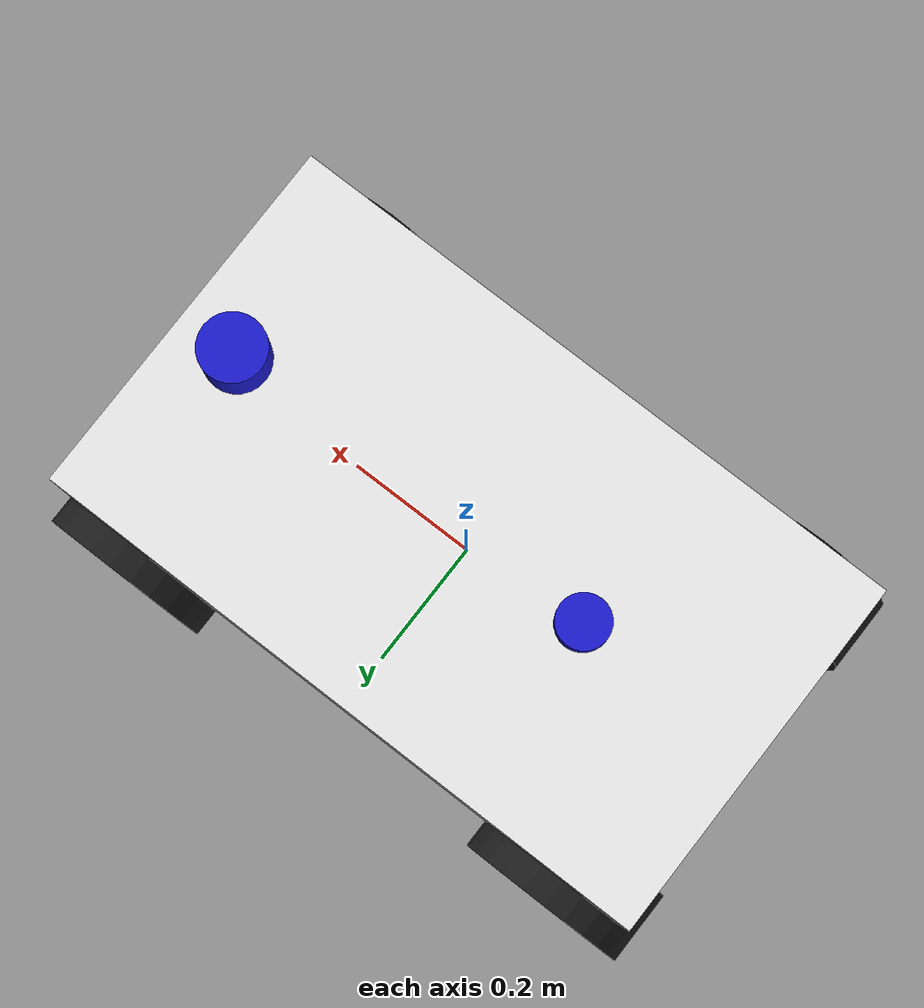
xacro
<?xml version="1.0"?>
<robot xmlns:xacro="http://www.ros.org/wiki/xacro" name="my_custom_robot_hardware">

  <xacro:property name="chassis_length" value="1.0" />
  <xacro:property name="chassis_width"  value="0.58" />
  <xacro:property name="chassis_height" value="0.32" />
  <xacro:property name="chassis_mass"   value="15.0" />
  <xacro:property name="wheel_radius" value="0.14" />

  <xacro:property name="wheel_width"  value="0.12" />
  <xacro:property name="wheel_mass"   value="1.5" />
  <xacro:property name="wheelbase_x"  value="0.8" />
  <xacro:property name="track_width"  value="0.55" />
  <xacro:property name="wheel_z_offset" value="${-chassis_height + wheel_radius}" />
  <xacro:property name="steer_link_length" value="0.02" />
  <xacro:property name="steer_link_radius" value="0.01" />
  <xacro:property name="steer_link_mass" value="0.1" />
  <xacro:property name="max_steer_angle" value="${pi/6}" />

  <material name="PlasticWhite">
      <color rgba="0.9 0.9 0.9 1.0"/>
  </material>
  <material name="PlasticBlack">
      <color rgba="0.1 0.1 0.1 1.0"/>
  </material>
  <material name="PlasticRed">
      <color rgba="0.8 0.1 0.1 1.0"/>
  </material>
  <material name="SensorBlue">
      <color rgba="0.1 0.1 0.8 1.0"/>
  </material>

  <xacro:macro name="box_inertia" params="m l w h">
    <inertia ixx="${m/12 * (h*h + w*w)}" ixy="0.0" ixz="0.0"
             iyy="${m/12 * (h*h + l*l)}" iyz="0.0"
             izz="${m/12 * (w*w + l*l)}" />
  </xacro:macro>

  <xacro:macro name="cylinder_inertia" params="m r h">
    <inertia ixx="${m/12 * (3*r*r + h*h)}" ixy="0.0" ixz="0.0"
             iyy="${m/12 * (3*r*r + h*h)}" iyz="0.0"
             izz="${m/2 * r*r}" />
  </xacro:macro>

  <xacro:macro name="sphere_inertia" params="m r">
    <inertia ixx="${2*m/5 * r*r}" ixy="0.0" ixz="0.0"
             iyy="${2*m/5 * r*r}" iyz="0.0"
             izz="${2*m/5 * r*r}" />
  </xacro:macro>

  <link name="world_dummy_link" />

  <link name="base_link">
    <visual>
      <origin xyz="0 0 0" rpy="0 0 0" />
      <geometry>
        <box size="${chassis_length} ${chassis_width} ${chassis_height}"/>
      </geometry>
      <material name="PlasticWhite"/>
    </visual>
    <collision>
      <origin xyz="0 0 0" rpy="0 0 0" />
      <geometry>
        <box size="${chassis_length} ${chassis_width} ${chassis_height}"/>
      </geometry>
    </collision>
    <inertial>
      <origin xyz="0 0 0" rpy="0 0 0"/> <mass value="${chassis_mass}"/>
      <xacro:box_inertia m="${chassis_mass}" l="${chassis_length}" w="${chassis_width}" h="${chassis_height}" />
    </inertial>
  </link>

  <joint name="world_to_base_joint" type="fixed">
    <parent link="world_dummy_link"/>
    <child link="base_link"/>
    <origin xyz="0 0 0" rpy="0 0 0"/>
  </joint>

  <xacro:macro name="wheel" params="prefix"> <link name="${prefix}_wheel_link">
      <visual>
        <origin xyz="0 0 0" rpy="${pi/2} 0 0" />
        <geometry>
          <cylinder radius="${wheel_radius}" length="${wheel_width}"/>
        </geometry>
        <material name="PlasticBlack"/>
      </visual>
      <collision>
        <origin xyz="0 0 0" rpy="${pi/2} 0 0" />
        <geometry>
          <cylinder radius="${wheel_radius}" length="${wheel_width}"/>
        </geometry>
      </collision>
      <inertial>
        <origin xyz="0 0 0" rpy="${pi/2} 0 0"/>
        <mass value="${wheel_mass}"/>
        <xacro:cylinder_inertia m="${wheel_mass}" r="${wheel_radius}" h="${wheel_width}" />
      </inertial>
    </link>

    <joint name="${prefix}_wheel_joint" type="continuous">
      <parent link="${prefix}_steer_link"/> <child link="${prefix}_wheel_link"/>
      <origin xyz="0 0 0" rpy="0 0 0"/>
      <axis xyz="0 1 0"/> <limit effort="100" velocity="100"/> </joint>

    <transmission name="${prefix}_wheel_transmission">
      <type>transmission_interface/SimpleTransmission</type>
      <joint name="${prefix}_wheel_joint">
         <hardwareInterface>hardware_interface/VelocityJointInterface</hardwareInterface>
      </joint>
      <actuator name="${prefix}_wheel_motor">
         <hardwareInterface>hardware_interface/VelocityJointInterface</hardwareInterface>
         <mechanicalReduction>1</mechanicalReduction> </actuator>
    </transmission>
  </xacro:macro>

  <xacro:macro name="steering_link" params="prefix reflect_steer">
    <link name="${prefix}_steer_link">
      <visual> <origin xyz="0 0 0" rpy="0 0 0" />
        <geometry>
          <cylinder radius="${steer_link_radius}" length="${steer_link_length}"/>
        </geometry>
        <material name="PlasticRed"/>
      </visual>
      <collision>
        <origin xyz="0 0 0" rpy="0 0 0" />
        <geometry>
          <cylinder radius="${steer_link_radius}" length="${steer_link_length}"/>
        </geometry>
      </collision>
      <inertial> <origin xyz="0 0 0" rpy="0 0 0"/>
        <mass value="${steer_link_mass}"/>
        <xacro:cylinder_inertia m="${steer_link_mass}" r="${steer_link_radius}" h="${steer_link_length}" />
      </inertial>
    </link>

    <joint name="${prefix}_steer_joint" type="revolute">
      <parent link="base_link"/>
      <child link="${prefix}_steer_link"/>
      <origin xyz="${wheelbase_x/2} ${reflect_steer*track_width/2} ${wheel_z_offset}" rpy="0 0 0"/>
      <axis xyz="0 0 1"/> <limit lower="${-max_steer_angle}" upper="${max_steer_angle}" effort="100" velocity="10"/>
    </joint>

    <transmission name="${prefix}_steer_transmission">
        <type>transmission_interface/SimpleTransmission</type>
        <joint name="${prefix}_steer_joint">
             <hardwareInterface>hardware_interface/PositionJointInterface</hardwareInterface>
        </joint>
        <actuator name="${prefix}_steer_motor">
             <hardwareInterface>hardware_interface/PositionJointInterface</hardwareInterface>
             <mechanicalReduction>1</mechanicalReduction> </actuator>
    </transmission>

    <xacro:wheel prefix="${prefix}"/>
  </xacro:macro>

  <xacro:macro name="rear_wheel" params="prefix reflect">
      <link name="${prefix}_steer_link"/>
      <joint name="${prefix}_dummy_fixed_joint" type="fixed">
          <parent link="base_link"/>
          <child link="${prefix}_steer_link"/>
          <origin xyz="${-wheelbase_x/2} ${reflect*track_width/2} ${wheel_z_offset}" rpy="0 0 0"/>
      </joint>
      <xacro:wheel prefix="${prefix}"/>
  </xacro:macro>

  <xacro:steering_link prefix="front_left"  reflect_steer="1" />
  <xacro:steering_link prefix="front_right" reflect_steer="-1" />

  <xacro:rear_wheel prefix="rear_left"  reflect="1" />
  <xacro:rear_wheel prefix="rear_right" reflect="-1" />

  <link name="imu_link">
     <visual>
       <geometry>
         <box size="0.05 0.05 0.02"/>
       </geometry>
        <material name="SensorBlue"/>
     </visual>
     <collision>
       <geometry>
         <box size="0.05 0.05 0.02"/>
       </geometry>
     </collision>
     <inertial>
        <mass value="0.05"/> <xacro:box_inertia m="0.05" l="0.05" w="0.05" h="0.02"/>
     </inertial>
  </link>
  <joint name="imu_joint" type="fixed">
    <parent link="base_link"/>
    <child link="imu_link"/>
    <origin xyz="0.05 0 ${chassis_height/2 - 0.01}" rpy="0 0 0"/>
  </joint>

  <link name="gps_link">
      <visual>
       <geometry>
         <cylinder radius="0.04" length="0.03"/>
       </geometry>
       <material name="SensorBlue"/>
     </visual>
      <collision>
       <geometry>
         <cylinder radius="0.04" length="0.03"/>
       </geometry>
     </collision>
     <inertial>
        <mass value="0.08"/> <xacro:cylinder_inertia m="0.08" r="0.04" h="0.03"/>
     </inertial>
  </link>
  <joint name="gps_joint" type="fixed">
    <parent link="base_link"/>
    <child link="gps_link"/>
    <origin xyz="-0.2 0 ${chassis_height/2 + 0.015}" rpy="0 0 0"/>
  </joint>

  <link name="laser">
     <visual>
       <geometry>
         <cylinder radius="0.05" length="0.07"/>
       </geometry>
       <material name="SensorBlue"/>
     </visual>
     <collision>
       <geometry>
         <cylinder radius="0.05" length="0.07"/>
       </geometry>
     </collision>
      <inertial>
        <mass value="0.2"/> <xacro:cylinder_inertia m="0.2" r="0.05" h="0.07"/>
     </inertial>
  </link>
  <joint name="lidar_joint" type="fixed">
    <parent link="base_link"/>
    <child link="laser"/>
    <origin xyz="${chassis_length/2 - 0.1} 0 ${chassis_height/2 + 0.035}" rpy="0 0 0"/>
  </joint>

  </robot>
